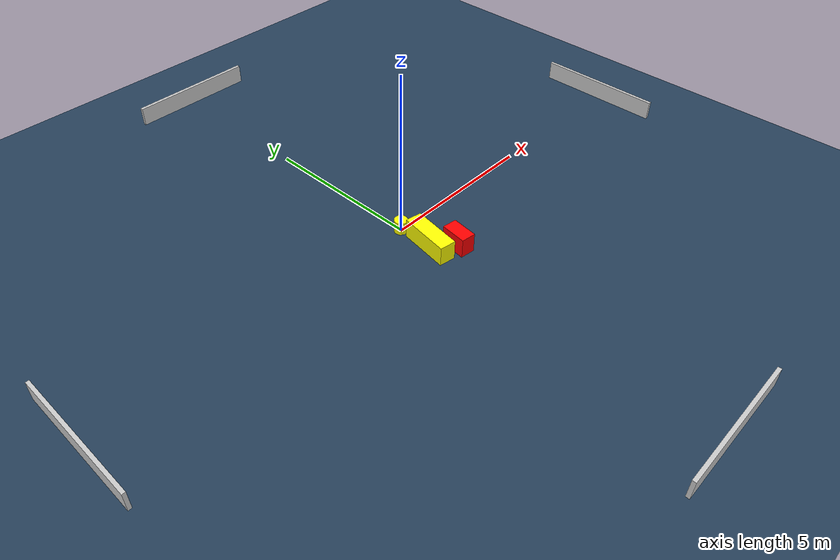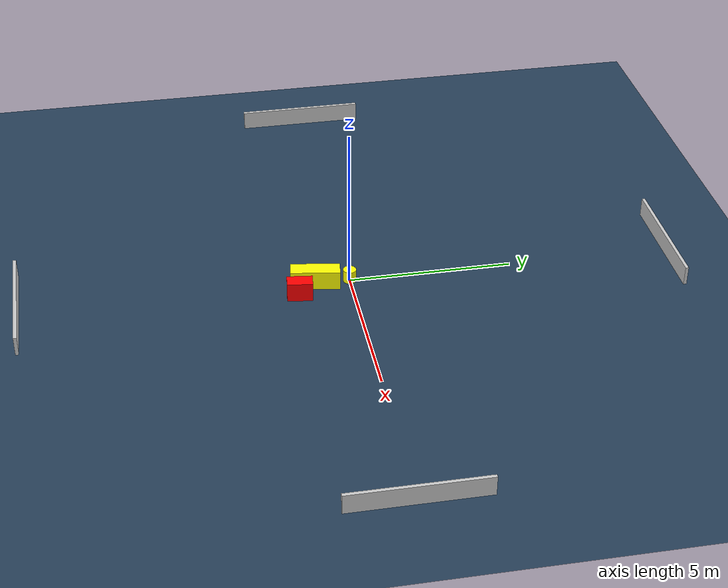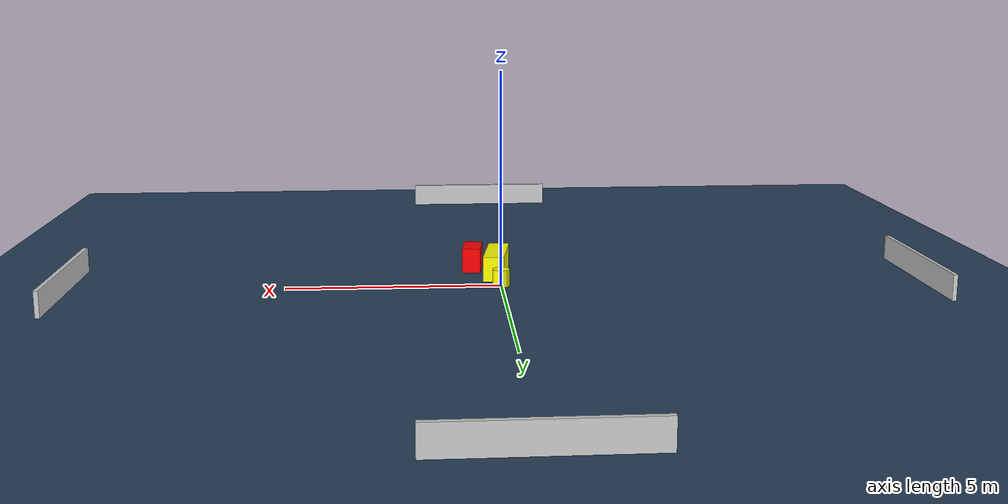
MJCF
<?xml version="1.0" ?>
<mujoco model="generated_environment">
  <option timestep="0.01" integrator="RK4" cone="elliptic"/>
  <default>
    <geom density="1"/>
  </default>
  <asset>
    <texture builtin="gradient" height="3072" name="skybox" rgb1="0.3 0.5 0.7" rgb2="0 0 0" type="skybox" width="512"/>
    <texture builtin="checker" height="300" name="groundplane" rgb1="0.2 0.3 0.4" rgb2="0.1 0.2 0.3" type="2d" width="300"/>
    <material name="groundplane" reflectance="0.2" texrepeat="5 5" texture="groundplane"/>
  </asset>
  <worldbody>
    <light dir="0 0 -1" directional="true" pos="0 0 1.5"/>
    <geom condim="3" friction="0.5 0.005 0.001" material="groundplane" name="floor" pos="0 0 0" size="0 0 0.05" type="plane"/>
    <body name="walls">
      <geom name="wall_1" condim="4" pos="-10.0 0.0 0.3" rgba="0.800000011920929 0.800000011920929 0.800000011920929 1.0" size="0.05 2.0 0.3" type="box"/>
      <geom name="wall_2" condim="4" pos="10.0 0.0 0.3" rgba="0.800000011920929 0.800000011920929 0.800000011920929 1.0" size="0.05 2.0 0.3" type="box"/>
      <geom name="wall_3" condim="4" pos="0.0 -10.0 0.3" rgba="0.800000011920929 0.800000011920929 0.800000011920929 1.0" size="2.0 0.05 0.3" type="box"/>
      <geom name="wall_4" condim="4" pos="0.0 10.0 0.3" rgba="0.800000011920929 0.800000011920929 0.800000011920929 1.0" size="2.0 0.05 0.3" type="box"/>
    </body>
    <body name="robot">
      <joint name="joint_x" type="slide" pos="0 0 0" axis="1 0 0"/>
      <joint name="joint_y" type="slide" pos="0 0 0" axis="0 1 0"/>
      <geom name="robot" type="cylinder" pos="0.0 0.0 0.2" size="0.2 0.2 0.0" mass="5.0" friction="1.0 0.005 0.0001" condim="4" rgba="1.0 1.0 0.0 1.0"/>
    </body>
    <body name="obstacle_1_movable">
      <geom name="obstacle_1_movable" condim="4" pos="0.046458250482929876 -1.0651644521906696 0.3" euler="0 0 261.1300211112322" friction="0.0 0.005 0.001" rgba="1.0 1.0 0.0 1.0" size="0.7528051201994495 0.2461115957938344 0.3" type="box" mass="0.1"/>
      <joint type="free"/>
    </body>
    <body name="obstacle_2_static">
      <geom name="obstacle_2_static" condim="4" pos="0.5950368676409223 -1.6195804191298178 0.3" euler="0 0 353.1612856923132" friction="0.0 0.005 0.001" rgba="1.0 0.0 0.0 1.0" size="0.21985344974996213 0.3885370066003361 0.3" type="box"/>
    </body>
  </worldbody>
  <actuator>
    <motor name="actuator_x" joint="joint_x" gear="1" ctrlrange="-1 1"/>
    <motor name="actuator_y" joint="joint_y" gear="1" ctrlrange="-1 1"/>
  </actuator>
</mujoco>
